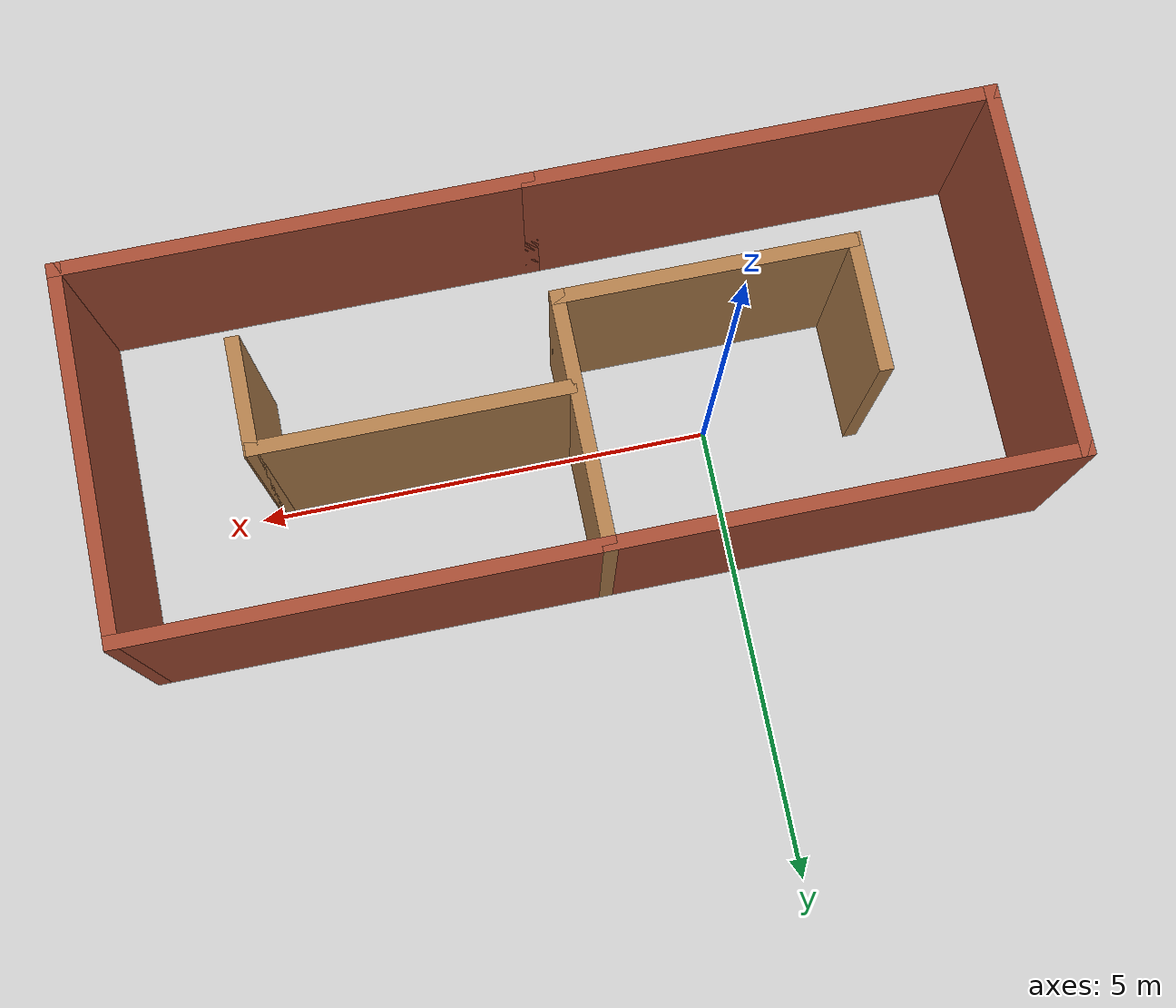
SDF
<sdf version="1.7">
 <world name="default">
  <light name="sun" type="directional">
   <pose>0 0 10 0 -0 0</pose>
   <diffuse>0.8 0.8 0.8 1</diffuse>
   <specular>0.2 0.2 0.2 1</specular>
   <attenuation>
    <range>1000</range>
    <constant>0.9</constant>
    <linear>0.01</linear>
    <quadratic>0.001</quadratic>
   </attenuation>
   <direction>-0.5 0.1 -0.9</direction>
   <spot><inner_angle>0</inner_angle><outer_angle>0</outer_angle><falloff>0</falloff></spot>
  </light>
  <model name="ground_plane">
   <static>1</static>
   <link name="link">
    <collision name="collision">
     <geometry><plane><normal>0 0 1</normal><size>100 100</size></plane></geometry>
     <surface>
      <contact><collide_bitmask>65535</collide_bitmask></contact>
      <friction><ode><mu>100</mu><mu2>50</mu2></ode></friction>
     </surface>
    </collision>
    <visual name="visual">
     <cast_shadows>0</cast_shadows>
     <geometry><plane><normal>0 0 1</normal><size>100 100</size></plane></geometry>
     <material>
      <script><uri>file://media/materials/scripts/gazebo.material</uri><name>Gazebo/Grey</name></script>
     </material>
    </visual>
   </link>
  </model>
  <gravity>0 0 -9.8</gravity>
  <magnetic_field>6e-06 2.3e-05 -4.2e-05</magnetic_field>
  <atmosphere type="adiabatic"/>
  <physics type="ode">
   <max_step_size>0.001</max_step_size>
   <real_time_factor>1</real_time_factor>
   <real_time_update_rate>1000</real_time_update_rate>
  </physics>
  <scene><ambient>0.4 0.4 0.4 1</ambient><background>0.7 0.7 0.7 1</background><shadows>1</shadows></scene>
  <spherical_coordinates>
   <surface_model>EARTH_WGS84</surface_model>
   <latitude_deg>0</latitude_deg>
   <longitude_deg>0</longitude_deg>
   <elevation>0</elevation>
   <heading_deg>0</heading_deg>
  </spherical_coordinates>
  <model name="house1">
   <pose>1.5 0 0 0 -0 0</pose>
   <link name="Wall_0">
    <collision name="Wall_0_Collision">
     <geometry><box><size>5 0.15 2.5</size></box></geometry>
     <pose>0 0 1.25 0 -0 0</pose>
    </collision>
    <visual name="Wall_0_Visual">
     <pose>0 0 1.25 0 -0 0</pose>
     <geometry><box><size>5 0.15 2.5</size></box></geometry>
     <material>
      <script><uri>file://media/materials/scripts/gazebo.material</uri><name>Gazebo/Bricks</name></script>
      <ambient>1 1 1 1</ambient>
     </material>
     <meta><layer>0</layer></meta>
    </visual>
    <pose>-2.425 -2.3475 0 0 -0 0</pose>
   </link>
   <link name="Wall_15">
    <collision name="Wall_15_Collision">
     <geometry><box><size>2.72022 0.15 2.5</size></box></geometry>
     <pose>0 0 1.25 0 -0 0</pose>
    </collision>
    <visual name="Wall_15_Visual">
     <pose>0 0 1.25 0 -0 0</pose>
     <geometry><box><size>2.72022 0.15 2.5</size></box></geometry>
     <material>
      <script><uri>file://media/materials/scripts/gazebo.material</uri><name>Gazebo/Wood</name></script>
      <ambient>1 1 1 1</ambient>
     </material>
     <meta><layer>0</layer></meta>
    </visual>
    <pose>-0.05247 0.217421 0 0 -0 -1.5708</pose>
   </link>
   <link name="Wall_16">
    <collision name="Wall_16_Collision">
     <geometry><box><size>3.16769 0.15 2.5</size></box></geometry>
     <pose>0 0 1.25 0 -0 0</pose>
    </collision>
    <visual name="Wall_16_Visual">
     <pose>0 0 1.25 0 -0 0</pose>
     <geometry><box><size>3.16769 0.15 2.5</size></box></geometry>
     <material>
      <script><uri>file://media/materials/scripts/gazebo.material</uri><name>Gazebo/Wood</name></script>
      <ambient>1 1 1 1</ambient>
     </material>
     <meta><layer>0</layer></meta>
    </visual>
    <pose>-1.56132 -1.06766 0 0 -0 3.14159</pose>
   </link>
   <link name="Wall_17">
    <collision name="Wall_17_Collision">
     <geometry><box><size>1.47016 0.15 2.5</size></box></geometry>
     <pose>0 0 1.25 0 -0 0</pose>
    </collision>
    <visual name="Wall_17_Visual">
     <pose>0 0 1.25 0 -0 0</pose>
     <geometry><box><size>1.47016 0.15 2.5</size></box></geometry>
     <material>
      <script><uri>file://media/materials/scripts/gazebo.material</uri><name>Gazebo/Wood</name></script>
      <ambient>1 1 1 1</ambient>
     </material>
     <meta><layer>0</layer></meta>
    </visual>
    <pose>-3.10514 -0.407579 0 0 -0 1.5708</pose>
   </link>
   <link name="Wall_19">
    <collision name="Wall_19_Collision">
     <geometry><box><size>3.3251 0.15 2.5</size></box></geometry>
     <pose>0 0 1.25 0 -0 0</pose>
    </collision>
    <visual name="Wall_19_Visual">
     <pose>0 0 1.25 0 -0 0</pose>
     <geometry><box><size>3.3251 0.15 2.5</size></box></geometry>
     <material>
      <script><uri>file://media/materials/scripts/gazebo.material</uri><name>Gazebo/Wood</name></script>
      <ambient>1 1 1 1</ambient>
     </material>
     <meta><layer>0</layer></meta>
    </visual>
    <pose>1.60755 -0.1275 0 0 -0 0</pose>
   </link>
   <link name="Wall_2">
    <collision name="Wall_2_Collision">
     <geometry><box><size>4.94753 0.15 2.5</size></box></geometry>
     <pose>0 0 1.25 0 -0 0</pose>
    </collision>
    <visual name="Wall_2_Visual">
     <pose>0 0 1.25 0 -0 0</pose>
     <geometry><box><size>4.94753 0.15 2.5</size></box></geometry>
     <material>
      <script><uri>file://media/materials/scripts/gazebo.material</uri><name>Gazebo/Bricks</name></script>
      <ambient>1 1 1 1</ambient>
     </material>
     <meta><layer>0</layer></meta>
    </visual>
    <pose>-2.45124 1.5025 0 0 -0 3.14159</pose>
   </link>
   <link name="Wall_20">
    <collision name="Wall_20_Collision">
     <geometry><box><size>1.25 0.15 2.5</size></box></geometry>
     <pose>0 0 1.25 0 -0 0</pose>
    </collision>
    <visual name="Wall_20_Visual">
     <pose>0 0 1.25 0 -0 0</pose>
     <geometry><box><size>1.25 0.15 2.5</size></box></geometry>
     <material>
      <script><uri>file://media/materials/scripts/gazebo.material</uri><name>Gazebo/Wood</name></script>
      <ambient>1 1 1 1</ambient>
     </material>
     <meta><layer>0</layer></meta>
    </visual>
    <pose>3.21259 -0.6775 0 0 -0 -1.5708</pose>
   </link>
   <link name="Wall_3">
    <collision name="Wall_3_Collision">
     <geometry><box><size>4 0.15 2.5</size></box></geometry>
     <pose>0 0 1.25 0 -0 0</pose>
    </collision>
    <visual name="Wall_3_Visual">
     <pose>0 0 1.25 0 -0 0</pose>
     <geometry><box><size>4 0.15 2.5</size></box></geometry>
     <material>
      <script><uri>file://media/materials/scripts/gazebo.material</uri><name>Gazebo/Bricks</name></script>
      <ambient>1 1 1 1</ambient>
     </material>
     <meta><layer>0</layer></meta>
    </visual>
    <pose>-4.85 -0.4225 0 0 -0 -1.5708</pose>
   </link>
   <link name="Wall_5">
    <collision name="Wall_5_Collision">
     <geometry><box><size>5 0.15 2.5</size></box></geometry>
     <pose>0 0 1.25 0 -0 0</pose>
    </collision>
    <visual name="Wall_5_Visual">
     <pose>0 0 1.25 0 -0 0</pose>
     <geometry><box><size>5 0.15 2.5</size></box></geometry>
     <material>
      <script><uri>file://media/materials/scripts/gazebo.material</uri><name>Gazebo/Bricks</name></script>
      <ambient>1 1 1 1</ambient>
     </material>
     <meta><layer>0</layer></meta>
    </visual>
    <pose>2.425 -2.3475 0 0 -0 0</pose>
   </link>
   <link name="Wall_6">
    <collision name="Wall_6_Collision">
     <geometry><box><size>4 0.15 2.5</size></box></geometry>
     <pose>0 0 1.25 0 -0 0</pose>
    </collision>
    <visual name="Wall_6_Visual">
     <pose>0 0 1.25 0 -0 0</pose>
     <geometry><box><size>4 0.15 2.5</size></box></geometry>
     <material>
      <script><uri>file://media/materials/scripts/gazebo.material</uri><name>Gazebo/Bricks</name></script>
      <ambient>1 1 1 1</ambient>
     </material>
     <meta><layer>0</layer></meta>
    </visual>
    <pose>4.85 -0.4225 0 0 -0 1.5708</pose>
   </link>
   <link name="Wall_7">
    <collision name="Wall_7_Collision">
     <geometry><box><size>5.05247 0.15 2.5</size></box></geometry>
     <pose>0 0 1.25 0 -0 0</pose>
    </collision>
    <visual name="Wall_7_Visual">
     <pose>0 0 1.25 0 -0 0</pose>
     <geometry><box><size>5.05247 0.15 2.5</size></box></geometry>
     <material>
      <script><uri>file://media/materials/scripts/gazebo.material</uri><name>Gazebo/Bricks</name></script>
      <ambient>1 1 1 1</ambient>
     </material>
     <meta><layer>0</layer></meta>
    </visual>
    <pose>2.39877 1.5025 0 0 -0 3.14159</pose>
   </link>
   <static>1</static>
  </model>
 </world>
</sdf>
